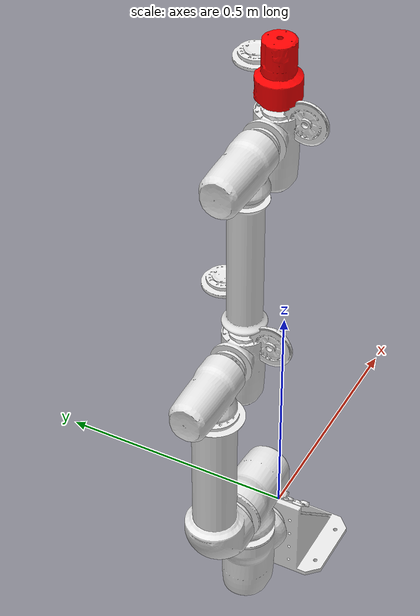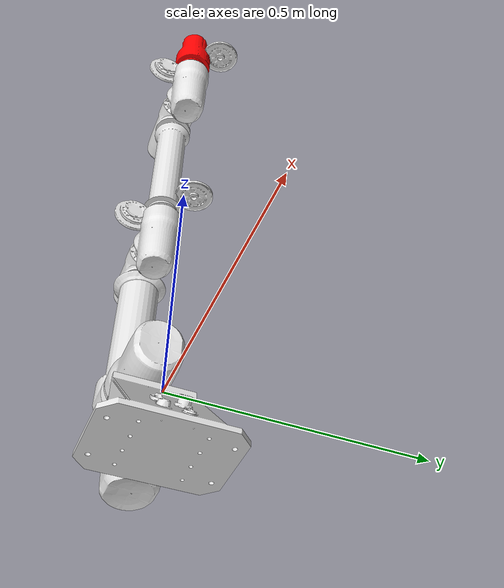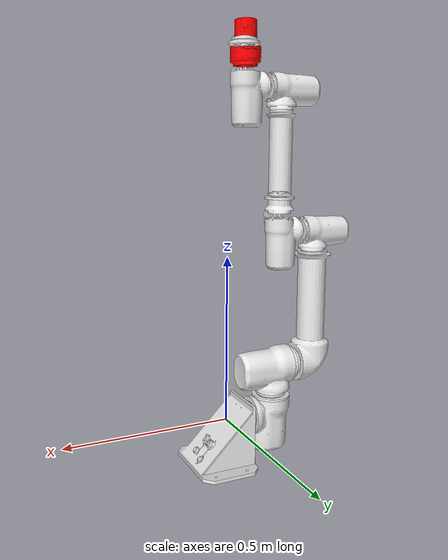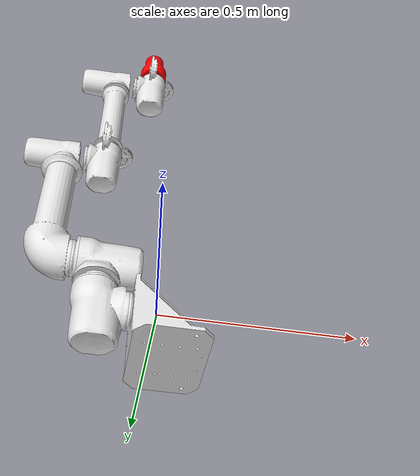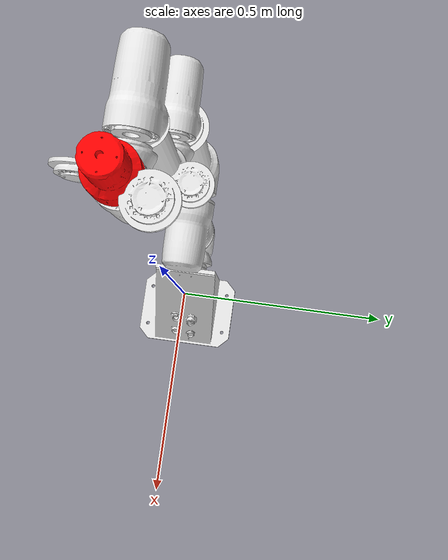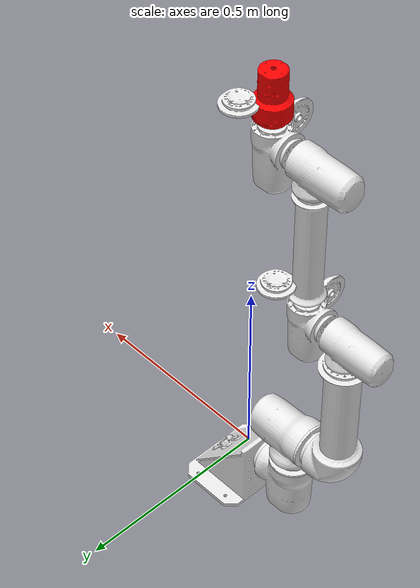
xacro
<?xml version="1.0" ?>

<robot name="robco" xmlns:xacro="http://www.ros.org/wiki/xacro">
    <xacro:include filename="$(find robco_description)/urdf/robco_modules.xacro"/>

    <xacro:robco_module_0106 name="base" next="drive1"/>
    <xacro:robco_module_0066 name="drive1" next="drive2"/>
    <xacro:robco_module_0066 name="drive2" next="link1"/>
    <xacro:robco_module_0078 name="link1" next="drive3"/>
    <xacro:robco_module_0065 name="drive3" next="drive4"/>
    <xacro:robco_module_0065 name="drive4" next="link2"/>
    <xacro:robco_module_0007 name="link2" next="drive5"/>
    <xacro:robco_module_0065 name="drive5" next="drive6"/>
    <xacro:robco_module_0065 name="drive6" next="effector"/>
    <xacro:robco_module_0801 name="effector"/>
</robot>

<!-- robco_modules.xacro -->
<robot xmlns:xacro="http://www.ros.org/wiki/xacro">
	<xacro:include filename="$(find robco_description)/urdf/robco_modules_base.xacro"/>
	<xacro:macro name="robco_module_0081" params="name next">
		<xacro:robco_link_module mesh_filename="0081_I148-400/I148-400.stl" name="${name}" next="${next}" tf_rpy="0.0 -0.0 0.0" tf_xyz="0 0 0.4"/>
	</xacro:macro>
	<xacro:macro name="robco_module_0033" params="name next">
		<xacro:robco_link_module mesh_filename="0033_I86-141/I86-141.stl" name="${name}" next="${next}" tf_rpy="0.0 -0.0 0.0" tf_xyz="0 0 0.141"/>
	</xacro:macro>
	<xacro:macro name="robco_module_0110" params="name next">
		<xacro:robco_base_module mesh_filename="0110_B148-90deg/B148-90deg.stl" name="${name}" next="${next}" tf_rpy="0 -1.57079632679 -0.0" tf_xyz="-0.07 0 0"/>
	</xacro:macro>
	<xacro:macro name="robco_module_0065" params="name next">
		<xacro:robco_drive_module distal_mesh_filename="0065_D86/D86-papa-distal.stl" distal_tf_rpy="0.0 -0.0 1.57079632679" distal_tf_xyz="0 0 0.0555" name="${name}" next="${next}" proximal_mesh_filename="0065_D86/D86-papa-proximal.stl" proximal_tf_rpy="1.57079632679 -0.0 1.57079632679" proximal_tf_xyz="0 0 0.064"/>
	</xacro:macro>
	<xacro:macro name="robco_module_0924" params="name">
		<xacro:robco_end_effector mesh_filename="0924_E-trical-weights-only-1000g/dummy.stl" name="${name}" tf_rpy="0.0 -0.0 0.0" tf_xyz="-0.08795 0 0.078"/>
	</xacro:macro>
	<xacro:macro name="robco_module_0026" params="name next">
		<xacro:robco_link_module mesh_filename="0026_L116-348/L116-348.stl" name="${name}" next="${next}" tf_rpy="0.0 1.57079632679 0" tf_xyz="0.348 0 0.068"/>
	</xacro:macro>
	<xacro:macro name="robco_module_0005" params="name next">
		<xacro:robco_link_module mesh_filename="0005_I86-150/I86-150.stl" name="${name}" next="${next}" tf_rpy="0.0 -0.0 0.0" tf_xyz="0 0 0.15"/>
	</xacro:macro>
	<xacro:macro name="robco_module_0045" params="name next">
		<xacro:robco_drive_module distal_mesh_filename="0045_D116/D116-legacy_distal.stl" distal_tf_rpy="0.0 -0.0 1.57079632679" distal_tf_xyz="0 0 0.0705" name="${name}" next="${next}" proximal_mesh_filename="0045_D116/D116-legacy_proximal.stl" proximal_tf_rpy="1.57079632679 -0.0 1.57079632679" proximal_tf_xyz="0 0 0.082"/>
	</xacro:macro>
	<xacro:macro name="robco_module_0920" params="name">
		<xacro:robco_end_effector mesh_filename="0920_E-trical-with-indicators-5000g/dummy.stl" name="${name}" tf_rpy="0.0 1.57079632679 0" tf_xyz="0.12 0 0.1"/>
	</xacro:macro>
	<xacro:macro name="robco_module_0064" params="name next">
		<xacro:robco_drive_module distal_mesh_filename="0064_D86/D86-legacy-distal.stl" distal_tf_rpy="0.0 -0.0 1.57079632679" distal_tf_xyz="0 0 0.0555" name="${name}" next="${next}" proximal_mesh_filename="0064_D86/D86-legacy-proximal.stl" proximal_tf_rpy="1.57079632679 -0.0 1.57079632679" proximal_tf_xyz="0 0 0.064"/>
	</xacro:macro>
	<xacro:macro name="robco_module_0069" params="name next">
		<xacro:robco_link_module mesh_filename="0069_I86-160/I86-160.stl" name="${name}" next="${next}" tf_rpy="0.0 -0.0 0.0" tf_xyz="0 0 0.16"/>
	</xacro:macro>
	<xacro:macro name="robco_module_0038" params="name next">
		<xacro:robco_drive_module distal_mesh_filename="0038_D116/D116-legacy_distal.stl" distal_tf_rpy="0.0 -0.0 1.57079632679" distal_tf_xyz="0 0 0.0705" name="${name}" next="${next}" proximal_mesh_filename="0038_D116/D116-legacy_proximal.stl" proximal_tf_rpy="1.57079632679 -0.0 1.57079632679" proximal_tf_xyz="0 0 0.082"/>
	</xacro:macro>
	<xacro:macro name="robco_module_0025" params="name next">
		<xacro:robco_link_module mesh_filename="0025_L116-448/L116-448.stl" name="${name}" next="${next}" tf_rpy="0.0 1.57079632679 0" tf_xyz="0.448 0 0.068"/>
	</xacro:macro>
	<xacro:macro name="robco_module_0089" params="name next">
		<xacro:robco_drive_module distal_mesh_filename="0089_D116/D116-876.0002-G-distal.stl" distal_tf_rpy="0.0 -0.0 1.57079632679" distal_tf_xyz="0 0 0.0702" name="${name}" next="${next}" proximal_mesh_filename="0089_D116/D116-876.0002-G-proximal.stl" proximal_tf_rpy="1.57079632679 -0.0 1.57079632679" proximal_tf_xyz="0 0 0.082"/>
	</xacro:macro>
	<xacro:macro name="robco_module_0034" params="name next">
		<xacro:robco_link_module mesh_filename="0034_I86-350/I86-350.stl" name="${name}" next="${next}" tf_rpy="0.0 -0.0 0.0" tf_xyz="0 0 0.35"/>
	</xacro:macro>
	<xacro:macro name="robco_module_0802" params="name">
		<xacro:robco_end_effector mesh_filename="0802_E-Zimmer-GEP2006IO-00-B/0802_E-Zimmer-GEP2006IO-00-B.stl" name="${name}" tf_rpy="0.0 -0.0 0.0" tf_xyz="0 0 0.1366"/>
	</xacro:macro>
	<xacro:macro name="robco_module_0921" params="name">
		<xacro:robco_end_effector mesh_filename="0921_E-trical-with-indicators-5500g/dummy.stl" name="${name}" tf_rpy="0.0 1.57079632679 0" tf_xyz="0.12 0 0.1"/>
	</xacro:macro>
	<xacro:macro name="robco_module_0800" params="name">
		<xacro:robco_end_effector mesh_filename="0800_E-generic-IO/0800_E-generic-IO.stl" name="${name}" tf_rpy="0.0 -0.0 0.0" tf_xyz="0 0 0"/>
	</xacro:macro>
	<xacro:macro name="robco_module_0060" params="name next">
		<xacro:robco_link_module mesh_filename="0060_L148-600/L148-600.stl" name="${name}" next="${next}" tf_rpy="0.0 1.57079632679 0" tf_xyz="0.6 0 0.085"/>
	</xacro:macro>
	<xacro:macro name="robco_module_0008" params="name next">
		<xacro:robco_link_module mesh_filename="0008_I86-400/I86-400.stl" name="${name}" next="${next}" tf_rpy="0.0 -0.0 0.0" tf_xyz="0 0 0.4"/>
	</xacro:macro>
	<xacro:macro name="robco_module_0039" params="name next">
		<xacro:robco_drive_module distal_mesh_filename="0039_D86/D86-legacy-distal.stl" distal_tf_rpy="0.0 -0.0 1.57079632679" distal_tf_xyz="0 0 0.0555" name="${name}" next="${next}" proximal_mesh_filename="0039_D86/D86-legacy-proximal.stl" proximal_tf_rpy="1.57079632679 -0.0 1.57079632679" proximal_tf_xyz="0 0 0.064"/>
	</xacro:macro>
	<xacro:macro name="robco_module_0933" params="name">
		<xacro:robco_end_effector mesh_filename="0933_E-trical-weights-only-5500g/dummy.stl" name="${name}" tf_rpy="0.0 -0.0 0.0" tf_xyz="-0.08795 0 0.078"/>
	</xacro:macro>
	<xacro:macro name="robco_module_0029" params="name next">
		<xacro:robco_link_module mesh_filename="0029_L116-800/L116-800.stl" name="${name}" next="${next}" tf_rpy="0.0 1.57079632679 0" tf_xyz="0.8 0 0.068"/>
	</xacro:macro>
	<xacro:macro name="robco_module_0010" params="name next">
		<xacro:robco_link_module mesh_filename="0010_I86-600/I86-600.stl" name="${name}" next="${next}" tf_rpy="0.0 -0.0 0.0" tf_xyz="0 0 0.6"/>
	</xacro:macro>
	<xacro:macro name="robco_module_0057" params="name next">
		<xacro:robco_link_module mesh_filename="0057_L148-550/L148-550.stl" name="${name}" next="${next}" tf_rpy="0.0 1.57079632679 0" tf_xyz="0.55 0 0.085"/>
	</xacro:macro>
	<xacro:macro name="robco_module_0086" params="name next">
		<xacro:robco_drive_module distal_mesh_filename="0086_D116/D116-876.0002-G-distal.stl" distal_tf_rpy="0.0 -0.0 1.57079632679" distal_tf_xyz="0 0 0.0702" name="${name}" next="${next}" proximal_mesh_filename="0086_D116/D116-876.0002-G-proximal.stl" proximal_tf_rpy="1.57079632679 -0.0 1.57079632679" proximal_tf_xyz="0 0 0.082"/>
	</xacro:macro>
	<xacro:macro name="robco_module_0109" params="name next">
		<xacro:robco_base_module mesh_filename="0109_B116-minus90deg/B86-minus90deg.stl" name="${name}" next="${next}" tf_rpy="3.14159265359 1.57079632679 0" tf_xyz="-0.07 0 0"/>
	</xacro:macro>
	<xacro:macro name="robco_module_0035" params="name next">
		<xacro:robco_link_module mesh_filename="0035_L86-336/L86-336.stl" name="${name}" next="${next}" tf_rpy="0.0 1.57079632679 0" tf_xyz="0.336 0 0.053"/>
	</xacro:macro>
	<xacro:macro name="robco_module_0087" params="name next">
		<xacro:robco_drive_module distal_mesh_filename="0087_D86/D86-876.0001-H-distal.stl" distal_tf_rpy="0.0 -0.0 1.57079632679" distal_tf_xyz="0 0 0.0552" name="${name}" next="${next}" proximal_mesh_filename="0087_D86/D86-876.0001-H-proximal.stl" proximal_tf_rpy="1.57079632679 -0.0 1.57079632679" proximal_tf_xyz="0 0 0.064"/>
	</xacro:macro>
	<xacro:macro name="robco_module_0903" params="name">
		<xacro:robco_end_effector mesh_filename="0903_E-gimatic-vacuum/E-gimatic-vacuum.stl" name="${name}" tf_rpy="0.0 -0.0 0.0" tf_xyz="0 0 0.12727"/>
	</xacro:macro>
	<xacro:macro name="robco_module_0017" params="name next">
		<xacro:robco_link_module mesh_filename="0017_L86-600/L86-600.stl" name="${name}" next="${next}" tf_rpy="0.0 1.57079632679 0" tf_xyz="0.6 0 0.053"/>
	</xacro:macro>
	<xacro:macro name="robco_module_0072" params="name next">
		<xacro:robco_link_module mesh_filename="0072_L86-240/L86-240.stl" name="${name}" next="${next}" tf_rpy="0.0 1.57079632679 0" tf_xyz="0.24 0 0.053"/>
	</xacro:macro>
	<xacro:macro name="robco_module_0040" params="name next">
		<xacro:robco_drive_module distal_mesh_filename="0040_D86/D86-legacy-distal.stl" distal_tf_rpy="0.0 -0.0 1.57079632679" distal_tf_xyz="0 0 0.0555" name="${name}" next="${next}" proximal_mesh_filename="0040_D86/D86-legacy-proximal.stl" proximal_tf_rpy="1.57079632679 -0.0 1.57079632679" proximal_tf_xyz="0 0 0.064"/>
	</xacro:macro>
	<xacro:macro name="robco_module_0068" params="name next">
		<xacro:robco_link_module mesh_filename="0068_I116-400/I116-400.stl" name="${name}" next="${next}" tf_rpy="0.0 -0.0 0.0" tf_xyz="0 0 0.4"/>
	</xacro:macro>
	<xacro:macro name="robco_module_0031" params="name next">
		<xacro:robco_link_module mesh_filename="0031_L86-55/L86-55.stl" name="${name}" next="${next}" tf_rpy="0 -1.57079632679 -3.14159265359" tf_xyz="0.0547 0 0.053"/>
	</xacro:macro>
	<xacro:macro name="robco_module_0913" params="name">
		<xacro:robco_end_effector mesh_filename="0913_E-trical-with-indicators-1500g/dummy.stl" name="${name}" tf_rpy="0.0 1.57079632679 0" tf_xyz="0.12 0 0.1"/>
	</xacro:macro>
	<xacro:macro name="robco_module_0919" params="name">
		<xacro:robco_end_effector mesh_filename="0919_E-trical-with-indicators-4500g/dummy.stl" name="${name}" tf_rpy="0.0 1.57079632679 0" tf_xyz="0.12 0 0.1"/>
	</xacro:macro>
	<xacro:macro name="robco_module_0054" params="name next">
		<xacro:robco_link_module mesh_filename="0054_L116-300/L116-300.stl" name="${name}" next="${next}" tf_rpy="0.0 1.57079632679 0" tf_xyz="0.3 0 0.068"/>
	</xacro:macro>
	<xacro:macro name="robco_module_0931" params="name">
		<xacro:robco_end_effector mesh_filename="0931_E-trical-weights-only-4500g/dummy.stl" name="${name}" tf_rpy="0.0 -0.0 0.0" tf_xyz="-0.08795 0 0.078"/>
	</xacro:macro>
	<xacro:macro name="robco_module_0041" params="name next">
		<xacro:robco_drive_module distal_mesh_filename="0041_D86/D86-legacy-distal.stl" distal_tf_rpy="0.0 -0.0 1.57079632679" distal_tf_xyz="0 0 0.0555" name="${name}" next="${next}" proximal_mesh_filename="0041_D86/D86-legacy-proximal.stl" proximal_tf_rpy="1.57079632679 -0.0 1.57079632679" proximal_tf_xyz="0 0 0.064"/>
	</xacro:macro>
	<xacro:macro name="robco_module_0049" params="name next">
		<xacro:robco_link_module mesh_filename="0049_I116-1000/I116-1000.stl" name="${name}" next="${next}" tf_rpy="0.0 -0.0 0.0" tf_xyz="0 0 1.0"/>
	</xacro:macro>
	<xacro:macro name="robco_module_0009" params="name next">
		<xacro:robco_link_module mesh_filename="0009_I86-500/I86-500.stl" name="${name}" next="${next}" tf_rpy="0.0 -0.0 0.0" tf_xyz="0 0 0.5"/>
	</xacro:macro>
	<xacro:macro name="robco_module_0012" params="name next">
		<xacro:robco_link_module mesh_filename="0012_L86-150/L86-150.stl" name="${name}" next="${next}" tf_rpy="0.0 1.57079632679 0" tf_xyz="0.15 0 0.053"/>
	</xacro:macro>
	<xacro:macro name="robco_module_0804" params="name">
		<xacro:robco_end_effector mesh_filename="0804_E-simple-ISO50/0804_E-simple-ISO50.stl" name="${name}" tf_rpy="0.0 -0.0 0.0" tf_xyz="0 0 0.034"/>
	</xacro:macro>
	<xacro:macro name="robco_module_0080" params="name next">
		<xacro:robco_link_module mesh_filename="0080_I148-600/I148-600.stl" name="${name}" next="${next}" tf_rpy="0.0 -0.0 0.0" tf_xyz="0 0 0.6"/>
	</xacro:macro>
	<xacro:macro name="robco_module_0021" params="name next">
		<xacro:robco_link_module mesh_filename="0021_L86-183/L86-183.stl" name="${name}" next="${next}" tf_rpy="0.0 1.57079632679 0" tf_xyz="0.186 0 0.053"/>
	</xacro:macro>
	<xacro:macro name="robco_module_0095" params="name next">
		<xacro:robco_link_module mesh_filename="0095_I116-305/I116-300.stl" name="${name}" next="${next}" tf_rpy="0.0 -0.0 0.0" tf_xyz="0 0 0.305"/>
	</xacro:macro>
	<xacro:macro name="robco_module_0805" params="name">
		<xacro:robco_end_effector mesh_filename="0805_E-simple-vacuum-90deg/0805_E-simple-vacuum-90deg.stl" name="${name}" tf_rpy="0.0 1.57079632679 0" tf_xyz="0.084 0 0.038"/>
	</xacro:macro>
	<xacro:macro name="robco_module_0020" params="name next">
		<xacro:robco_link_module mesh_filename="0020_L116-400/L116-400.stl" name="${name}" next="${next}" tf_rpy="0.0 1.57079632679 0" tf_xyz="0.4 0 0.068"/>
	</xacro:macro>
	<xacro:macro name="robco_module_0030" params="name next">
		<xacro:robco_link_module mesh_filename="0030_L116-200/L116-200.stl" name="${name}" next="${next}" tf_rpy="0.0 1.57079632679 0" tf_xyz="0.2 0 0.068"/>
	</xacro:macro>
	<xacro:macro name="robco_module_0036" params="name next">
		<xacro:robco_link_module mesh_filename="0036_L86-250/L86-250.stl" name="${name}" next="${next}" tf_rpy="0.0 1.57079632679 0" tf_xyz="0.25 0 0.053"/>
	</xacro:macro>
	<xacro:macro name="robco_module_0078" params="name next">
		<xacro:robco_link_module mesh_filename="0078_L116-350/L116-350.stl" name="${name}" next="${next}" tf_rpy="0.0 1.57079632679 0" tf_xyz="0.35 0 0.068"/>
	</xacro:macro>
	<xacro:macro name="robco_module_0104" params="name next">
		<xacro:robco_base_module mesh_filename="0104_B86-90deg/B86-90deg.stl" name="${name}" next="${next}" tf_rpy="0 -1.57079632679 -0.0" tf_xyz="-0.07 0 0"/>
	</xacro:macro>
	<xacro:macro name="robco_module_0111" params="name next">
		<xacro:robco_base_module mesh_filename="0111_B148/B148.stl" name="${name}" next="${next}" tf_rpy="0.0 -0.0 0.0" tf_xyz="0 0 0.071"/>
	</xacro:macro>
	<xacro:macro name="robco_module_0093" params="name next">
		<xacro:robco_link_module mesh_filename="0093_I86-305/I86-310.stl" name="${name}" next="${next}" tf_rpy="0.0 -0.0 0.0" tf_xyz="0 0 0.305"/>
	</xacro:macro>
	<xacro:macro name="robco_module_0058" params="name next">
		<xacro:robco_link_module mesh_filename="0058_I148-650/I148-650.stl" name="${name}" next="${next}" tf_rpy="0.0 -0.0 0.0" tf_xyz="0 0 0.65"/>
	</xacro:macro>
	<xacro:macro name="robco_module_0806" params="name">
		<xacro:robco_end_effector mesh_filename="0806_E-Piab-VGS4005-SX12/0806_E-Piab-VGS4005-SX12.stl" name="${name}" tf_rpy="0.0 -0.0 0.0" tf_xyz="0 0 0.068"/>
	</xacro:macro>
	<xacro:macro name="robco_module_0803" params="name">
		<xacro:robco_end_effector mesh_filename="0803_E-Weiss-cr_easy_cig_200-030/0803_E-Weiss-cr_easy_cig_200-030.stl" name="${name}" tf_rpy="0.0 -0.0 0.0" tf_xyz="0 0 0.1211"/>
	</xacro:macro>
	<xacro:macro name="robco_module_0915" params="name">
		<xacro:robco_end_effector mesh_filename="0915_E-trical-with-indicators-2500g/dummy.stl" name="${name}" tf_rpy="0.0 1.57079632679 0" tf_xyz="0.12 0 0.1"/>
	</xacro:macro>
	<xacro:macro name="robco_module_0007" params="name next">
		<xacro:robco_link_module mesh_filename="0007_I86-300/I86-300.stl" name="${name}" next="${next}" tf_rpy="0.0 -0.0 0.0" tf_xyz="0 0 0.3"/>
	</xacro:macro>
	<xacro:macro name="robco_module_0932" params="name">
		<xacro:robco_end_effector mesh_filename="0932_E-trical-weights-only-5000g/dummy.stl" name="${name}" tf_rpy="0.0 -0.0 0.0" tf_xyz="-0.08795 0 0.078"/>
	</xacro:macro>
	<xacro:macro name="robco_module_0108" params="name next">
		<xacro:robco_base_module mesh_filename="0108_B86-minus90deg/B86-minus90deg.stl" name="${name}" next="${next}" tf_rpy="3.14159265359 1.57079632679 0" tf_xyz="-0.07 0 0"/>
	</xacro:macro>
	<xacro:macro name="robco_module_0013" params="name next">
		<xacro:robco_link_module mesh_filename="0013_L86-200/L86-200.stl" name="${name}" next="${next}" tf_rpy="0.0 1.57079632679 0" tf_xyz="0.2 0 0.053"/>
	</xacro:macro>
	<xacro:macro name="robco_module_0022" params="name next">
		<xacro:robco_link_module mesh_filename="0022_L86-283/L86-283.stl" name="${name}" next="${next}" tf_rpy="0.0 1.57079632679 0" tf_xyz="0.286 0 0.053"/>
	</xacro:macro>
	<xacro:macro name="robco_module_0083" params="name next">
		<xacro:robco_link_module mesh_filename="0083_L148-670/L148-670.stl" name="${name}" next="${next}" tf_rpy="0.0 1.57079632679 0" tf_xyz="0.67 0 0.085"/>
	</xacro:macro>
	<xacro:macro name="robco_module_0930" params="name">
		<xacro:robco_end_effector mesh_filename="0930_E-trical-weights-only-4000g/dummy.stl" name="${name}" tf_rpy="0.0 -0.0 0.0" tf_xyz="-0.08795 0 0.078"/>
	</xacro:macro>
	<xacro:macro name="robco_module_0910" params="name">
		<xacro:robco_end_effector mesh_filename="0910_E-trical-with-indicators-0g/dummy.stl" name="${name}" tf_rpy="0.0 1.57079632679 0" tf_xyz="0.12 0 0.1"/>
	</xacro:macro>
	<xacro:macro name="robco_module_0079" params="name next">
		<xacro:robco_link_module mesh_filename="0079_L116-650/L116-650.stl" name="${name}" next="${next}" tf_rpy="0.0 1.57079632679 0" tf_xyz="0.65 0 0.068"/>
	</xacro:macro>
	<xacro:macro name="robco_module_0904" params="name">
		<xacro:robco_end_effector mesh_filename="0904_E-ECBPMi-fraunhofer/E-ECBPMi-fraunhofer.stl" name="${name}" tf_rpy="0.0 -0.0 0.0" tf_xyz="0 0 0"/>
	</xacro:macro>
	<xacro:macro name="robco_module_0807" params="name">
		<xacro:robco_end_effector mesh_filename="0807_E-Zimmer-GEP5008IO-00-A/0807_E-Zimmer-GEP5008IO-00-A.stl" name="${name}" tf_rpy="0.0 -0.0 0.0" tf_xyz="0 0 0.168"/>
	</xacro:macro>
	<xacro:macro name="robco_module_0927" params="name">
		<xacro:robco_end_effector mesh_filename="0927_E-trical-weights-only-2500g/dummy.stl" name="${name}" tf_rpy="0.0 -0.0 0.0" tf_xyz="-0.08795 0 0.078"/>
	</xacro:macro>
	<xacro:macro name="robco_module_0076" params="name next">
		<xacro:robco_link_module mesh_filename="0076_I116-600/I116-600.stl" name="${name}" next="${next}" tf_rpy="0.0 -0.0 0.0" tf_xyz="0 0 0.6"/>
	</xacro:macro>
	<xacro:macro name="robco_module_0916" params="name">
		<xacro:robco_end_effector mesh_filename="0916_E-trical-with-indicators-3000g/dummy.stl" name="${name}" tf_rpy="0.0 1.57079632679 0" tf_xyz="0.12 0 0.1"/>
	</xacro:macro>
	<xacro:macro name="robco_module_0103" params="name next">
		<xacro:robco_base_module mesh_filename="0103_B86/B86.stl" name="${name}" next="${next}" tf_rpy="0.0 -0.0 0.0" tf_xyz="0 0 0.07"/>
	</xacro:macro>
	<xacro:macro name="robco_module_0082" params="name next">
		<xacro:robco_link_module mesh_filename="0082_L148-470/L148-470.stl" name="${name}" next="${next}" tf_rpy="0.0 1.57079632679 0" tf_xyz="0.47 0 0.085"/>
	</xacro:macro>
	<xacro:macro name="robco_module_0014" params="name next">
		<xacro:robco_link_module mesh_filename="0014_L86-300/L86-300.stl" name="${name}" next="${next}" tf_rpy="0.0 1.57079632679 0" tf_xyz="0.3 0 0.053"/>
	</xacro:macro>
	<xacro:macro name="robco_module_0809" params="name">
		<xacro:robco_end_effector mesh_filename="0809_E-Gimatic-SZ32-NC/0809_E-Gimatic-SZ32-NC.stl" name="${name}" tf_rpy="0.0 -0.0 0.0" tf_xyz="0 0 0.1345"/>
	</xacro:macro>
	<xacro:macro name="robco_module_0106" params="name next">
		<xacro:robco_base_module mesh_filename="0106_B116-90deg/B116-90deg.stl" name="${name}" next="${next}" tf_rpy="0 -1.57079632679 -0.0" tf_xyz="-0.07 0 0"/>
	</xacro:macro>
	<xacro:macro name="robco_module_0928" params="name">
		<xacro:robco_end_effector mesh_filename="0928_E-trical-weights-only-3000g/dummy.stl" name="${name}" tf_rpy="0.0 -0.0 0.0" tf_xyz="-0.08795 0 0.078"/>
	</xacro:macro>
	<xacro:macro name="robco_module_0926" params="name">
		<xacro:robco_end_effector mesh_filename="0926_E-trical-weights-only-2000g/dummy.stl" name="${name}" tf_rpy="0.0 -0.0 0.0" tf_xyz="-0.08795 0 0.078"/>
	</xacro:macro>
	<xacro:macro name="robco_module_0906" params="name">
		<xacro:robco_end_effector mesh_filename="0906_E-gimatic-sz25-koch/E-gimatic-sz25-koch.stl" name="${name}" tf_rpy="0.0 -0.0 0.0" tf_xyz="0 0 0.107"/>
	</xacro:macro>
	<xacro:macro name="robco_module_0917" params="name">
		<xacro:robco_end_effector mesh_filename="0917_E-trical-with-indicators-3500g/dummy.stl" name="${name}" tf_rpy="0.0 1.57079632679 0" tf_xyz="0.12 0 0.1"/>
	</xacro:macro>
	<xacro:macro name="robco_module_0808" params="name">
		<xacro:robco_end_effector mesh_filename="0808_E-simple-vacuum-180deg/0808_E-simple-vacuum-180deg.stl" name="${name}" tf_rpy="0.0 -0.0 0.0" tf_xyz="0 0 0.099"/>
	</xacro:macro>
	<xacro:macro name="robco_module_0024" params="name next">
		<xacro:robco_link_module mesh_filename="0024_L116-1000/L116-1000.stl" name="${name}" next="${next}" tf_rpy="0.0 1.57079632679 0" tf_xyz="1.0 0 0.053"/>
	</xacro:macro>
	<xacro:macro name="robco_module_0912" params="name">
		<xacro:robco_end_effector mesh_filename="0912_E-trical-with-indicators-1000g/dummy.stl" name="${name}" tf_rpy="0.0 1.57079632679 0" tf_xyz="0.12 0 0.1"/>
	</xacro:macro>
	<xacro:macro name="robco_module_0085" params="name next">
		<xacro:robco_drive_module distal_mesh_filename="0085_D86/D86-876.0001-H-distal.stl" distal_tf_rpy="0.0 -0.0 1.57079632679" distal_tf_xyz="0 0 0.0552" name="${name}" next="${next}" proximal_mesh_filename="0085_D86/D86-876.0001-H-proximal.stl" proximal_tf_rpy="1.57079632679 -0.0 1.57079632679" proximal_tf_xyz="0 0 0.064"/>
	</xacro:macro>
	<xacro:macro name="robco_module_0047" params="name next">
		<xacro:robco_link_module mesh_filename="0047_L148-1000/L148-1000.stl" name="${name}" next="${next}" tf_rpy="0.0 1.57079632679 0" tf_xyz="1.0 0 0.085"/>
	</xacro:macro>
	<xacro:macro name="robco_module_0063" params="name next">
		<xacro:robco_link_module mesh_filename="0063_L148-400/L148-400.stl" name="${name}" next="${next}" tf_rpy="0.0 1.57079632679 0" tf_xyz="0.4 0 0.085"/>
	</xacro:macro>
	<xacro:macro name="robco_module_0923" params="name">
		<xacro:robco_end_effector mesh_filename="0923_E-trical-weights-only-500g/dummy.stl" name="${name}" tf_rpy="0.0 -0.0 0.0" tf_xyz="-0.08795 0 0.078"/>
	</xacro:macro>
	<xacro:macro name="robco_module_0094" params="name next">
		<xacro:robco_link_module mesh_filename="0094_L86-165/L86-165.stl" name="${name}" next="${next}" tf_rpy="0.0 1.57079632679 0" tf_xyz="0.165 0 0.053"/>
	</xacro:macro>
	<xacro:macro name="robco_module_0914" params="name">
		<xacro:robco_end_effector mesh_filename="0914_E-trical-with-indicators-2000g/dummy.stl" name="${name}" tf_rpy="0.0 1.57079632679 0" tf_xyz="0.12 0 0.1"/>
	</xacro:macro>
	<xacro:macro name="robco_module_0037" params="name next">
		<xacro:robco_drive_module distal_mesh_filename="0037_D86/D86-legacy-distal.stl" distal_tf_rpy="0.0 -0.0 1.57079632679" distal_tf_xyz="0 0 0.0555" name="${name}" next="${next}" proximal_mesh_filename="0037_D86/D86-legacy-proximal.stl" proximal_tf_rpy="1.57079632679 -0.0 1.57079632679" proximal_tf_xyz="0 0 0.064"/>
	</xacro:macro>
	<xacro:macro name="robco_module_0091" params="name next">
		<xacro:robco_drive_module distal_mesh_filename="0091_D148/D148-romeo-distal.stl" distal_tf_rpy="0.0 -0.0 1.57079632679" distal_tf_xyz="0 0 0.086" name="${name}" next="${next}" proximal_mesh_filename="0091_D148/D148-romeo-proximal.stl" proximal_tf_rpy="1.57079632679 -0.0 1.57079632679" proximal_tf_xyz="0 0 0.104"/>
	</xacro:macro>
	<xacro:macro name="robco_module_0015" params="name next">
		<xacro:robco_link_module mesh_filename="0015_L86-400/L86-400.stl" name="${name}" next="${next}" tf_rpy="0.0 1.57079632679 0" tf_xyz="0.4 0 0.053"/>
	</xacro:macro>
	<xacro:macro name="robco_module_0059" params="name next">
		<xacro:robco_link_module mesh_filename="0059_I116-650/I116-650.stl" name="${name}" next="${next}" tf_rpy="0.0 -0.0 0.0" tf_xyz="0 0 0.65"/>
	</xacro:macro>
	<xacro:macro name="robco_module_0053" params="name next">
		<xacro:robco_link_module mesh_filename="0053_I116-300/I116-300.stl" name="${name}" next="${next}" tf_rpy="0.0 -0.0 0.0" tf_xyz="0 0 0.3"/>
	</xacro:macro>
	<xacro:macro name="robco_module_0925" params="name">
		<xacro:robco_end_effector mesh_filename="0925_E-trical-weights-only-1500g/dummy.stl" name="${name}" tf_rpy="0.0 -0.0 0.0" tf_xyz="-0.08795 0 0.078"/>
	</xacro:macro>
	<xacro:macro name="robco_module_0043" params="name next">
		<xacro:robco_drive_module distal_mesh_filename="0043_D86/D86-legacy-distal.stl" distal_tf_rpy="0.0 -0.0 1.57079632679" distal_tf_xyz="0 0 0.0555" name="${name}" next="${next}" proximal_mesh_filename="0043_D86/D86-legacy-proximal.stl" proximal_tf_rpy="1.57079632679 -0.0 1.57079632679" proximal_tf_xyz="0 0 0.064"/>
	</xacro:macro>
	<xacro:macro name="robco_module_0088" params="name next">
		<xacro:robco_drive_module distal_mesh_filename="0088_D116/D116-876.0002-G-distal.stl" distal_tf_rpy="0.0 -0.0 1.57079632679" distal_tf_xyz="0 0 0.0702" name="${name}" next="${next}" proximal_mesh_filename="0088_D116/D116-876.0002-G-proximal.stl" proximal_tf_rpy="1.57079632679 -0.0 1.57079632679" proximal_tf_xyz="0 0 0.082"/>
	</xacro:macro>
	<xacro:macro name="robco_module_0061" params="name next">
		<xacro:robco_drive_module distal_mesh_filename="0061_D86/D86-legacy-distal.stl" distal_tf_rpy="0.0 -0.0 1.57079632679" distal_tf_xyz="0 0 0.0555" name="${name}" next="${next}" proximal_mesh_filename="0061_D86/D86-legacy-proximal.stl" proximal_tf_rpy="1.57079632679 -0.0 1.57079632679" proximal_tf_xyz="0 0 0.064"/>
	</xacro:macro>
	<xacro:macro name="robco_module_0028" params="name next">
		<xacro:robco_link_module mesh_filename="0028_L116-600/L116-600.stl" name="${name}" next="${next}" tf_rpy="0.0 1.57079632679 0" tf_xyz="0.6 0 0.068"/>
	</xacro:macro>
	<xacro:macro name="robco_module_0027" params="name next">
		<xacro:robco_link_module mesh_filename="0027_L116-500/L116-500.stl" name="${name}" next="${next}" tf_rpy="0.0 1.57079632679 0" tf_xyz="0.5 0 0.068"/>
	</xacro:macro>
	<xacro:macro name="robco_module_0907" params="name">
		<xacro:robco_end_effector mesh_filename="0907_E-perfecdos/E-perfecdos.stl" name="${name}" tf_rpy="0.0 -0.0 0.0" tf_xyz="0.1015 0 0.02798"/>
	</xacro:macro>
	<xacro:macro name="robco_module_0105" params="name next">
		<xacro:robco_base_module mesh_filename="0105_B116/B116.stl" name="${name}" next="${next}" tf_rpy="0.0 -0.0 0.0" tf_xyz="0 0 0.07"/>
	</xacro:macro>
	<xacro:macro name="robco_module_0073" params="name next">
		<xacro:robco_link_module mesh_filename="0073_L86-340/L86-340.stl" name="${name}" next="${next}" tf_rpy="0.0 1.57079632679 0" tf_xyz="0.34 0 0.053"/>
	</xacro:macro>
	<xacro:macro name="robco_module_0032" params="name next">
		<xacro:robco_link_module mesh_filename="0032_L86-383/L86-383.stl" name="${name}" next="${next}" tf_rpy="0.0 1.57079632679 0" tf_xyz="0.383 0 0.053"/>
	</xacro:macro>
	<xacro:macro name="robco_module_0042" params="name next">
		<xacro:robco_drive_module distal_mesh_filename="0042_D86/D86-legacy-distal.stl" distal_tf_rpy="0.0 -0.0 1.57079632679" distal_tf_xyz="0 0 0.0555" name="${name}" next="${next}" proximal_mesh_filename="0042_D86/D86-legacy-proximal.stl" proximal_tf_rpy="1.57079632679 -0.0 1.57079632679" proximal_tf_xyz="0 0 0.064"/>
	</xacro:macro>
	<xacro:macro name="robco_module_0055" params="name next">
		<xacro:robco_link_module mesh_filename="0055_L148-800/L148-800.stl" name="${name}" next="${next}" tf_rpy="0.0 1.57079632679 0" tf_xyz="0.8 0 0.085"/>
	</xacro:macro>
	<xacro:macro name="robco_module_0006" params="name next">
		<xacro:robco_link_module mesh_filename="0006_I86-200/I86-200.stl" name="${name}" next="${next}" tf_rpy="0.0 -0.0 0.0" tf_xyz="0 0 0.2"/>
	</xacro:macro>
	<xacro:macro name="robco_module_0046" params="name next">
		<xacro:robco_drive_module distal_mesh_filename="0046_D148/D148-November_distal.stl" distal_tf_rpy="0.0 -0.0 1.57079632679" distal_tf_xyz="0 0 0.086" name="${name}" next="${next}" proximal_mesh_filename="0046_D148/D148-November_proximal.stl" proximal_tf_rpy="1.57079632679 -0.0 1.57079632679" proximal_tf_xyz="0 0 0.104"/>
	</xacro:macro>
	<xacro:macro name="robco_module_0044" params="name next">
		<xacro:robco_drive_module distal_mesh_filename="0044_D116/D116-legacy_distal.stl" distal_tf_rpy="0.0 -0.0 1.57079632679" distal_tf_xyz="0 0 0.0705" name="${name}" next="${next}" proximal_mesh_filename="0044_D116/D116-legacy_proximal.stl" proximal_tf_rpy="1.57079632679 -0.0 1.57079632679" proximal_tf_xyz="0 0 0.082"/>
	</xacro:macro>
	<xacro:macro name="robco_module_0092" params="name next">
		<xacro:robco_link_module mesh_filename="0092_I86-270/0092_I86-270.stl" name="${name}" next="${next}" tf_rpy="0.0 -0.0 0.0" tf_xyz="0 0 0.27"/>
	</xacro:macro>
	<xacro:macro name="robco_module_0922" params="name">
		<xacro:robco_end_effector mesh_filename="0922_E-trical-weights-only-0g/dummy.stl" name="${name}" tf_rpy="0.0 -0.0 0.0" tf_xyz="-0.08795 0 0.078"/>
	</xacro:macro>
	<xacro:macro name="robco_module_0003" params="name next">
		<xacro:robco_drive_module distal_mesh_filename="0003_D116/D116-legacy_distal.stl" distal_tf_rpy="0.0 -0.0 1.57079632679" distal_tf_xyz="0 0 0.0705" name="${name}" next="${next}" proximal_mesh_filename="0003_D116/D116-legacy_proximal.stl" proximal_tf_rpy="1.57079632679 -0.0 1.57079632679" proximal_tf_xyz="0 0 0.082"/>
	</xacro:macro>
	<xacro:macro name="robco_module_0066" params="name next">
		<xacro:robco_drive_module distal_mesh_filename="0066_D116/D116-quebec-distal.stl" distal_tf_rpy="0.0 -0.0 1.57079632679" distal_tf_xyz="0 0 0.0705" name="${name}" next="${next}" proximal_mesh_filename="0066_D116/D116-quebec-proximal.stl" proximal_tf_rpy="1.57079632679 -0.0 1.57079632679" proximal_tf_xyz="0 0 0.082"/>
	</xacro:macro>
	<xacro:macro name="robco_module_0051" params="name next">
		<xacro:robco_link_module mesh_filename="0051_I116-800/I116-800.stl" name="${name}" next="${next}" tf_rpy="0.0 -0.0 0.0" tf_xyz="0 0 0.8"/>
	</xacro:macro>
	<xacro:macro name="robco_module_0018" params="name next">
		<xacro:robco_link_module mesh_filename="0018_L86-700/L86-700.stl" name="${name}" next="${next}" tf_rpy="0.0 1.57079632679 0" tf_xyz="0.7 0 0.053"/>
	</xacro:macro>
	<xacro:macro name="robco_module_0023" params="name next">
		<xacro:robco_link_module mesh_filename="0023_I86-250/I86-250.stl" name="${name}" next="${next}" tf_rpy="0.0 -0.0 0.0" tf_xyz="0 0 0.25"/>
	</xacro:macro>
	<xacro:macro name="robco_module_0090" params="name next">
		<xacro:robco_link_module mesh_filename="0090_L148-710/0090_L148-710.stl" name="${name}" next="${next}" tf_rpy="0.0 1.57079632679 0" tf_xyz="0.71 0 0.085"/>
	</xacro:macro>
	<xacro:macro name="robco_module_0056" params="name next">
		<xacro:robco_link_module mesh_filename="0056_I116-500/I116-500.stl" name="${name}" next="${next}" tf_rpy="0.0 -0.0 0.0" tf_xyz="0 0 0.5"/>
	</xacro:macro>
	<xacro:macro name="robco_module_0075" params="name next">
		<xacro:robco_link_module mesh_filename="0075_I116-450/I116-450.stl" name="${name}" next="${next}" tf_rpy="0.0 -0.0 0.0" tf_xyz="0 0 0.45"/>
	</xacro:macro>
	<xacro:macro name="robco_module_0929" params="name">
		<xacro:robco_end_effector mesh_filename="0929_E-trical-weights-only-3500g/dummy.stl" name="${name}" tf_rpy="0.0 -0.0 0.0" tf_xyz="-0.08795 0 0.078"/>
	</xacro:macro>
	<xacro:macro name="robco_module_0911" params="name">
		<xacro:robco_end_effector mesh_filename="0911_E-trical-with-indicators-500g/dummy.stl" name="${name}" tf_rpy="0.0 1.57079632679 0" tf_xyz="0.12 0 0.1"/>
	</xacro:macro>
	<xacro:macro name="robco_module_0002" params="name next">
		<xacro:robco_drive_module distal_mesh_filename="0002_D116/D116-legacy_distal.stl" distal_tf_rpy="0.0 -0.0 1.57079632679" distal_tf_xyz="0 0 0.0705" name="${name}" next="${next}" proximal_mesh_filename="0002_D116/D116-legacy_proximal.stl" proximal_tf_rpy="1.57079632679 -0.0 1.57079632679" proximal_tf_xyz="0 0 0.082"/>
	</xacro:macro>
	<xacro:macro name="robco_module_0011" params="name next">
		<xacro:robco_link_module mesh_filename="0011_I86-700/I86-700.stl" name="${name}" next="${next}" tf_rpy="0.0 -0.0 0.0" tf_xyz="0 0 0.7"/>
	</xacro:macro>
	<xacro:macro name="robco_module_0050" params="name next">
		<xacro:robco_link_module mesh_filename="0050_I148-1000/I148-1000.stl" name="${name}" next="${next}" tf_rpy="0.0 -0.0 0.0" tf_xyz="0 0 1.0"/>
	</xacro:macro>
	<xacro:macro name="robco_module_0067" params="name next">
		<xacro:robco_drive_module distal_mesh_filename="0067_D148/D148-romeo-distal.stl" distal_tf_rpy="0.0 -0.0 1.57079632679" distal_tf_xyz="0 0 0.086" name="${name}" next="${next}" proximal_mesh_filename="0067_D148/D148-romeo-proximal.stl" proximal_tf_rpy="1.57079632679 -0.0 1.57079632679" proximal_tf_xyz="0 0 0.104"/>
	</xacro:macro>
	<xacro:macro name="robco_module_0074" params="name next">
		<xacro:robco_link_module mesh_filename="0074_L86-440/L86-440.stl" name="${name}" next="${next}" tf_rpy="0.0 1.57079632679 0" tf_xyz="0.44 0 0.053"/>
	</xacro:macro>
	<xacro:macro name="robco_module_0062" params="name next">
		<xacro:robco_link_module mesh_filename="0062_I116-750/I116-750.stl" name="${name}" next="${next}" tf_rpy="0.0 -0.0 0.0" tf_xyz="0 0 0.75"/>
	</xacro:macro>
	<xacro:macro name="robco_module_0052" params="name next">
		<xacro:robco_link_module mesh_filename="0052_I148-800/I148-800.stl" name="${name}" next="${next}" tf_rpy="0.0 -0.0 0.0" tf_xyz="0 0 0.8"/>
	</xacro:macro>
	<xacro:macro name="robco_module_0918" params="name">
		<xacro:robco_end_effector mesh_filename="0918_E-trical-with-indicators-4000g/dummy.stl" name="${name}" tf_rpy="0.0 1.57079632679 0" tf_xyz="0.12 0 0.1"/>
	</xacro:macro>
	<xacro:macro name="robco_module_0084" params="name next">
		<xacro:robco_link_module mesh_filename="0084_L148-870/L148-870.stl" name="${name}" next="${next}" tf_rpy="0.0 1.57079632679 0" tf_xyz="0.87 0 0.085"/>
	</xacro:macro>
	<xacro:macro name="robco_module_0016" params="name next">
		<xacro:robco_link_module mesh_filename="0016_L86-500/L86-500.stl" name="${name}" next="${next}" tf_rpy="0.0 1.57079632679 0" tf_xyz="0.5 0 0.053"/>
	</xacro:macro>
	<xacro:macro name="robco_module_0801" params="name">
		<xacro:robco_end_effector mesh_filename="0801_E-Schmalz-ECBPMi/0801_E-Schmalz-ECBPMi.stl" name="${name}" tf_rpy="0.0 -0.0 0.0" tf_xyz="0 0 0.1265"/>
	</xacro:macro>
	<xacro:macro name="robco_module_0001" params="name next">
		<xacro:robco_drive_module distal_mesh_filename="0001_D86/D86-legacy-distal.stl" distal_tf_rpy="0.0 -0.0 1.57079632679" distal_tf_xyz="0 0 0.0555" name="${name}" next="${next}" proximal_mesh_filename="0001_D86/D86-legacy-proximal.stl" proximal_tf_rpy="1.57079632679 -0.0 1.57079632679" proximal_tf_xyz="0 0 0.064"/>
	</xacro:macro>
	<xacro:macro name="robco_module_0070" params="name next">
		<xacro:robco_link_module mesh_filename="0070_L86-350/L86-350.stl" name="${name}" next="${next}" tf_rpy="0.0 1.57079632679 0" tf_xyz="0.35 0 0.053"/>
	</xacro:macro>
	<xacro:macro name="robco_module_0071" params="name next">
		<xacro:robco_link_module mesh_filename="0071_I86-310/I86-310.stl" name="${name}" next="${next}" tf_rpy="0.0 -0.0 0.0" tf_xyz="0 0 0.31"/>
	</xacro:macro>
	<xacro:macro name="robco_module_0096" params="name next">
		<xacro:robco_link_module mesh_filename="0096_L86-82/0096_L86-82.stl" name="${name}" next="${next}" tf_rpy="0 -1.57079632679 -3.14159265359" tf_xyz="0.082 0 0.053"/>
	</xacro:macro>
</robot>

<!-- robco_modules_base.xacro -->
<!--
    robco.xacro
    Provides macros for RobCo robot modules.
-->

<robot xmlns:xacro="http://www.ros.org/wiki/xacro">
    <xacro:property name="description_package" value="robco_description"/>
    <xacro:property name="default_prefix" value="robco"/>

    <xacro:macro name="robco_base_module" params="name mesh_filename tf_rpy tf_xyz next">
        <link name="${name}">
            <visual>
                <geometry>
                    <mesh filename="package://${description_package}/meshes/${mesh_filename}"/>
                </geometry>
                <material name="Gray">
                    <color rgba="0.9 0.9 0.9 1.0"/>
                </material>
            </visual>
        </link>

        <xacro:if value="${next != ''}">
            <joint name="${name}__${next}" type="fixed">
                <origin rpy="${tf_rpy}" xyz="${tf_xyz}"/>
                <parent link="${name}"/>
                <child link="${next}"/>
            </joint>
        </xacro:if>
    </xacro:macro>

    <xacro:macro name="robco_link_module" params="name mesh_filename tf_rpy tf_xyz next">
        <link name="${name}">
            <visual>
                <geometry>
                    <mesh filename="package://${description_package}/meshes/${mesh_filename}"/>
                </geometry>
                <material name="Gray">
                    <color rgba="0.9 0.9 0.9 1.0"/>
                </material>
            </visual>
        </link>

        <xacro:if value="${next != ''}">
            <joint name="${name}__${next}" type="fixed">
                <origin rpy="${tf_rpy}" xyz="${tf_xyz}"/>
                <parent link="${name}"/>
                <child link="${next}"/>
            </joint>
        </xacro:if>
     </xacro:macro>

    <xacro:macro name="robco_drive_module" params="name proximal_mesh_filename distal_mesh_filename proximal_tf_rpy proximal_tf_xyz distal_tf_rpy distal_tf_xyz lim_lower:=-4.7124 lim_upper:=4.7124 next">
        <!-- proximal link, calle ${name} to keep compatibility with next=... parameter -->
        <link name="${name}">
            <visual>
                <geometry>
                    <mesh filename="package://${description_package}/meshes/${proximal_mesh_filename}"/>
                </geometry>
                <material name="Gray">
                    <color rgba="0.9 0.9 0.9 1.0"/>
                </material>
            </visual>
        </link>

        <link name="${name}_shaft">
        </link>

        <link name="${name}_distal">
            <visual>
                <geometry>
                    <mesh filename="package://${description_package}/meshes/${distal_mesh_filename}"/>
                </geometry>
                <material name="Gray">
                    <color rgba="0.9 0.9 0.9 1.0"/>
                </material>
            </visual>
        </link>

        <joint name="${name}__${name}_shaft" type="fixed">
            <origin rpy="${proximal_tf_rpy}" xyz="${proximal_tf_xyz}"/>
            <parent link="${name}"/>
            <child link="${name}_shaft"/>
        </joint>

        <joint name="${name}_joint" type="revolute">
            <origin rpy="${distal_tf_rpy}" xyz="${distal_tf_xyz}"/>
            <axis xyz="0 0 1"/>
            <limit lower="${lim_lower}" upper="${lim_upper}" effort="0" velocity="0"/>
            <parent link="${name}_shaft"/>
            <child link="${name}_distal"/>
        </joint>

        <xacro:if value="${next != ''}">
            <joint name="${name}_distal__${next}" type="fixed">
                <parent link="${name}_distal"/>
                <child link="${next}"/>
            </joint>
        </xacro:if>
     </xacro:macro>

     <xacro:macro name="robco_end_effector" params="name mesh_filename tf_rpy tf_xyz">
        <link name="${name}">
            <visual>
                <geometry>
                    <mesh filename="package://${description_package}/meshes/${mesh_filename}"/>
                </geometry>
                <material name="Red">
                    <color rgba="1.0 0 0 1.0"/>
                </material>
            </visual>
        </link>
     </xacro:macro>

</robot>
